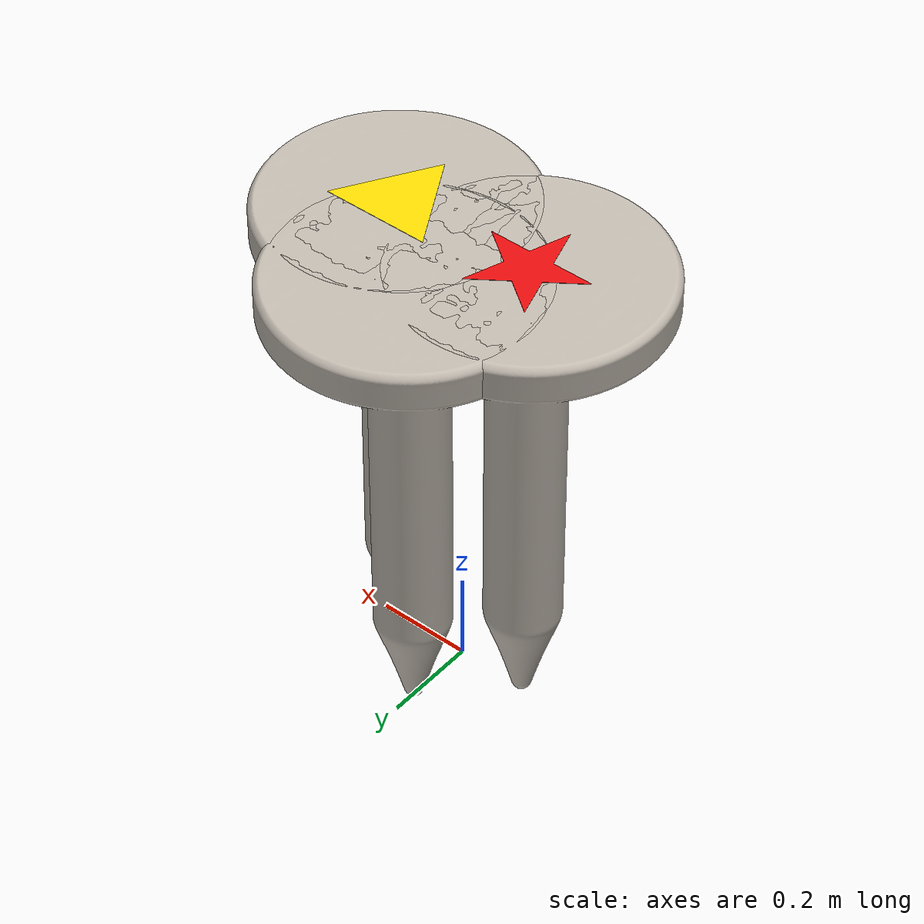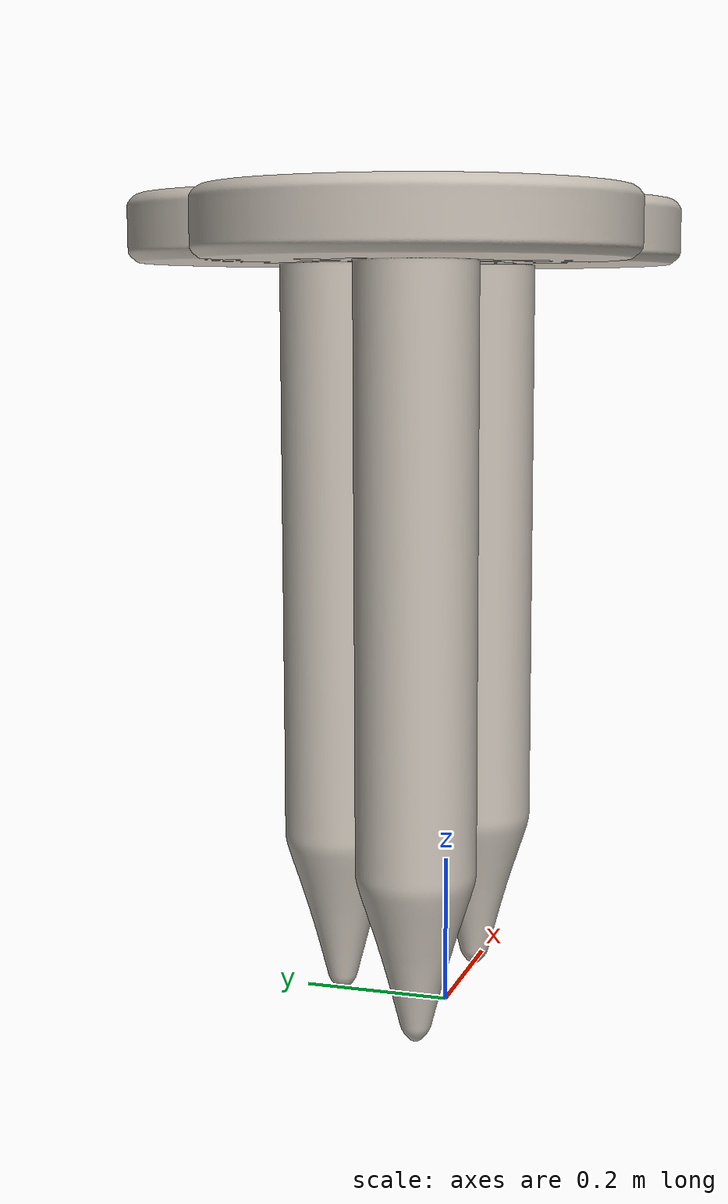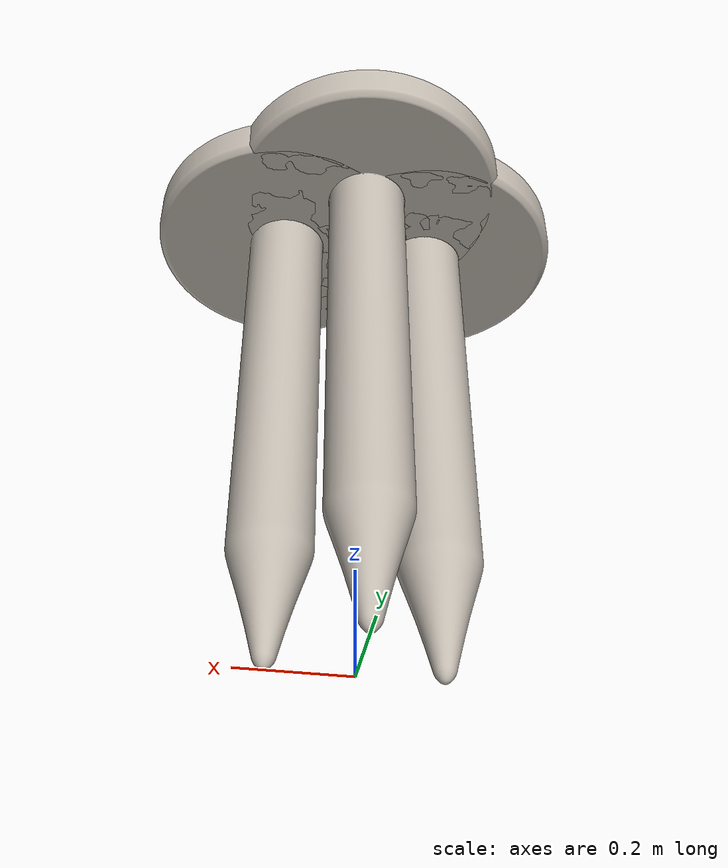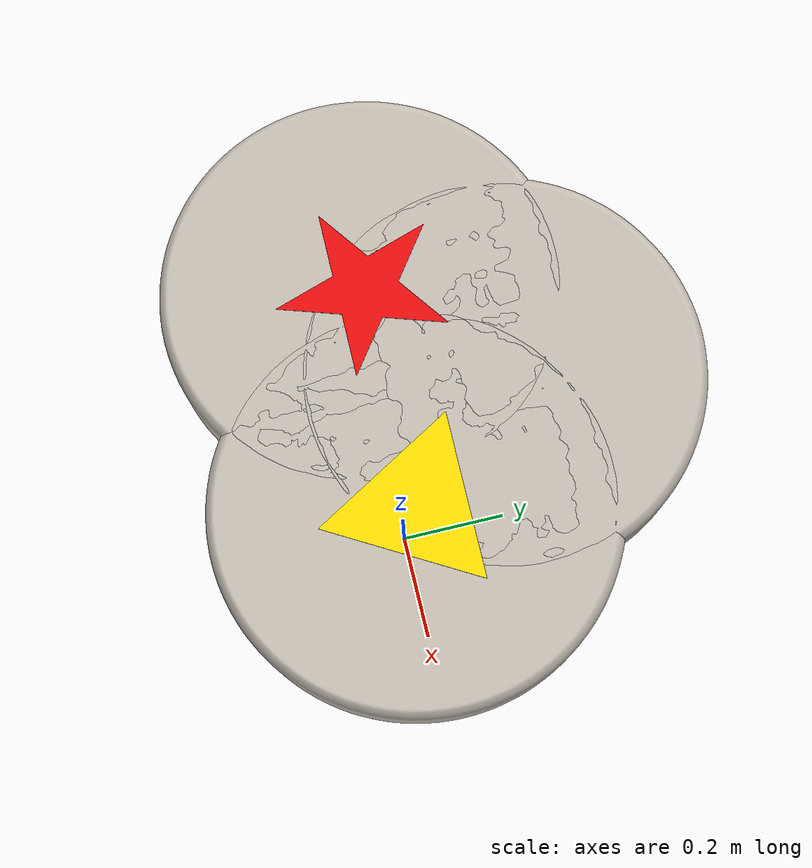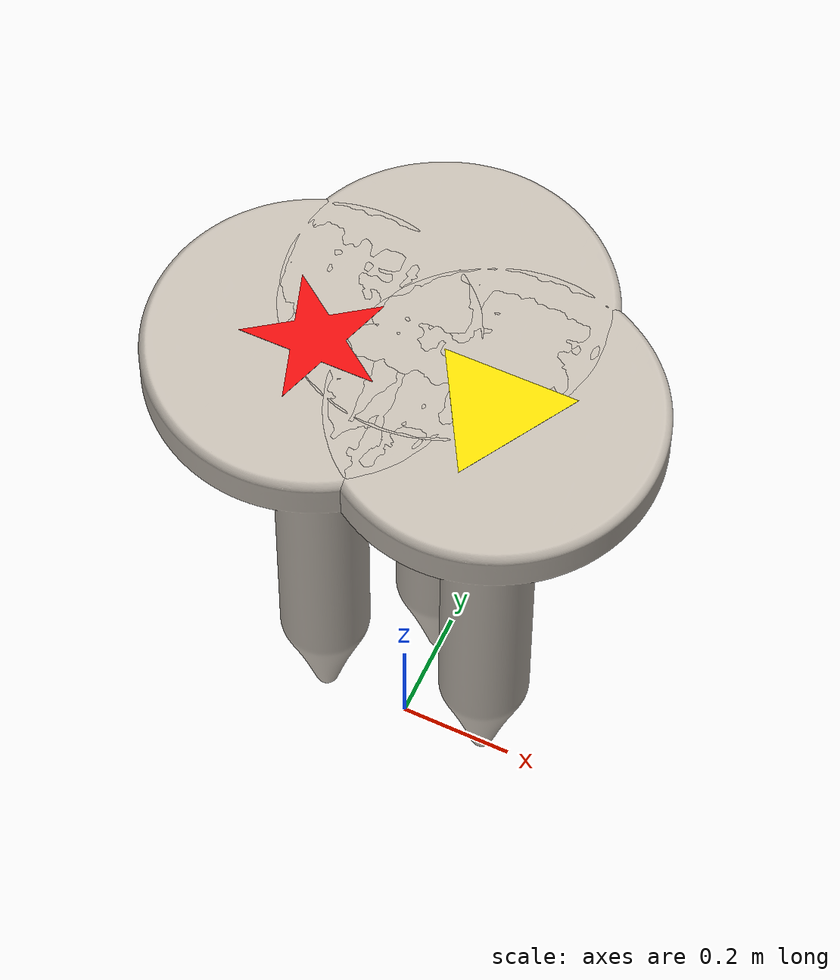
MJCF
<mujoco model="nail_variants_example">
  <!--
    Nail variants for dexmimicgen (meshes rotated +90 deg about +X from source assets).
    Assets live under dexmimicgen/models/assets/objects/nail/.
  -->

  <compiler meshdir="." assetdir="."/>

  <asset>
    <mesh name="nail_body_plain" file="plain/nail_body_plain.obj" scale="1 1 1"/>

    <mesh name="nail_body_star" file="nail_red_star/nail_body.obj"/>
    <mesh name="emblem_star" file="nail_red_star/emblem_star.obj"/>

    <mesh name="nail_body_tri" file="nail_yellow_triangle/nail_body.obj"/>
    <mesh name="emblem_triangle" file="nail_yellow_triangle/emblem_triangle.obj"/>

    <material name="nail_metal"
              texture="nail_tex" specular="0.5" shininess="0.5" reflectance="0.3"/>
    <material name="red_star_mat"
              rgba="0.90 0.05 0.05 1" specular="0.3" shininess="0.4"/>
    <material name="yellow_tri_mat"
              rgba="1.00 0.85 0.00 1" specular="0.3" shininess="0.4"/>

    <texture name="nail_tex" type="2d" file="plain/texture_pbr_20250901.png"/>
  </asset>

  <worldbody>
    <body name="nail_red_star" pos="-0.15 0 0">
      <freejoint/>
      <geom name="nail_star_body" type="mesh" mesh="nail_body_star"
            material="nail_metal" mass="0.05" contype="1" conaffinity="1"/>
      <geom name="nail_star_emblem" type="mesh" mesh="emblem_star"
            material="red_star_mat" mass="0" contype="0" conaffinity="0"/>
    </body>

    <body name="nail_yellow_triangle" pos="0.15 0 0">
      <freejoint/>
      <geom name="nail_tri_body" type="mesh" mesh="nail_body_tri"
            material="nail_metal" mass="0.05" contype="1" conaffinity="1"/>
      <geom name="nail_tri_emblem" type="mesh" mesh="emblem_triangle"
            material="yellow_tri_mat" mass="0" contype="0" conaffinity="0"/>
    </body>

    <body name="nail_plain" pos="0 0.15 0">
      <freejoint/>
      <geom name="nail_plain_body" type="mesh" mesh="nail_body_plain"
            material="nail_metal" mass="0.05" contype="1" conaffinity="1"/>
    </body>
  </worldbody>
</mujoco>
